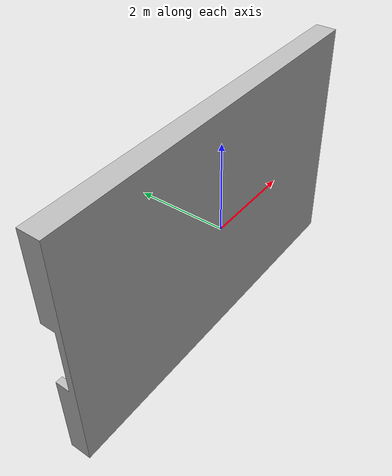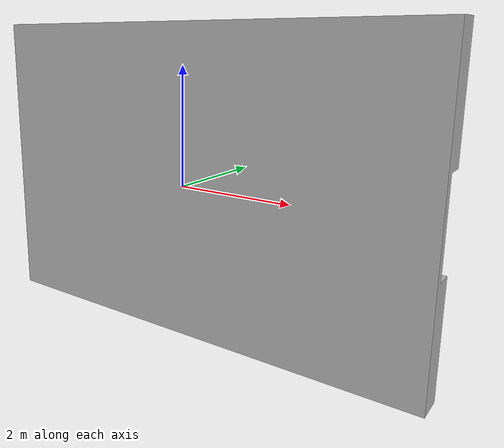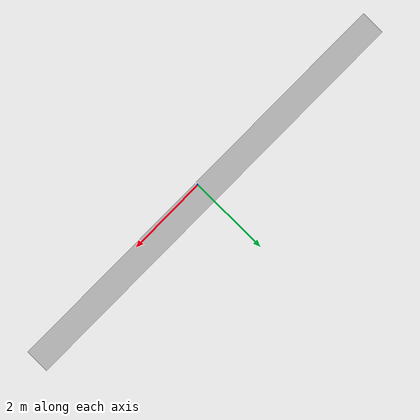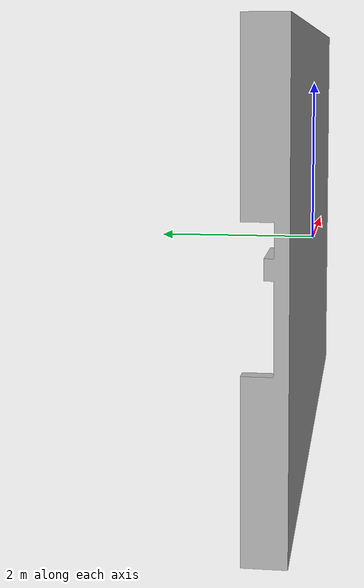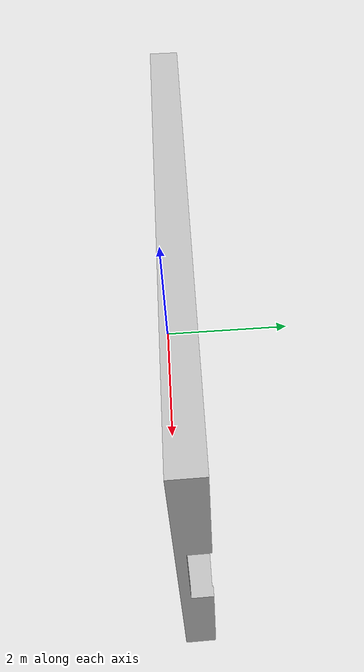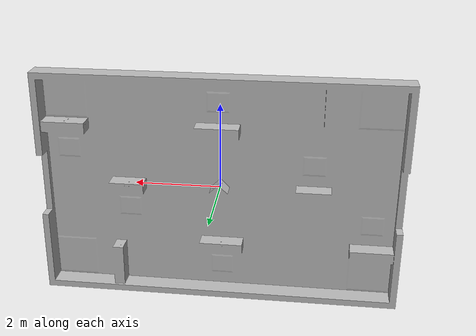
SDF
<sdf version="1.4">
  <model name="icra_field">
    <static>true</static>
    <link name="link">
      <pose>0 0 0 0 0 0</pose>
      <must_be_base_link>1</must_be_base_link>
      <collision name="collision">
        <geometry>
          <mesh>
            <uri>model://icra_field/meshes/field.dae</uri>
          </mesh>
        </geometry>
      </collision>
      <visual name="visual">
        <cast_shadows>false</cast_shadows>
        <geometry>
          <mesh>
            <uri>model://icra_field/meshes/field.dae</uri>
          </mesh>
        </geometry>
      </visual>
    </link>
  </model>
</sdf>
